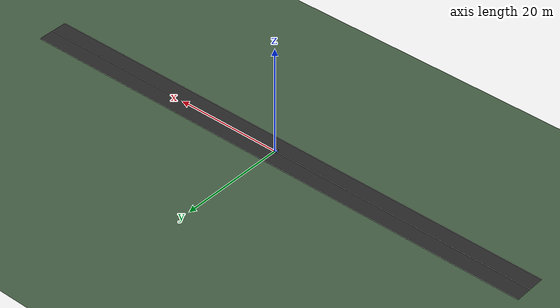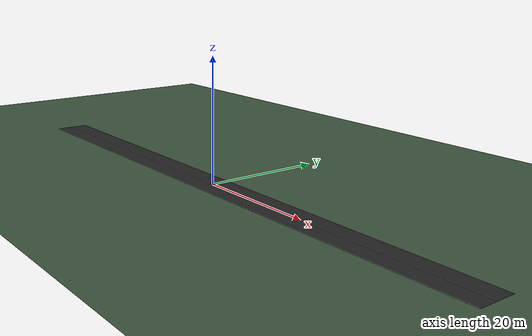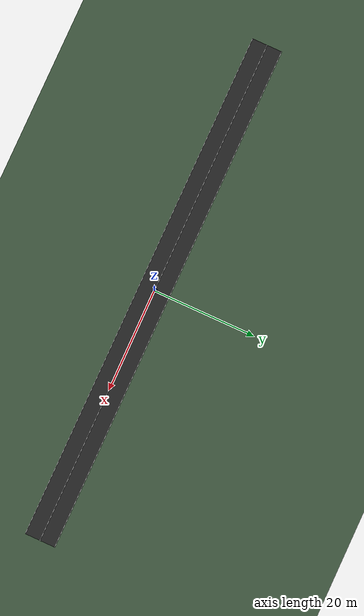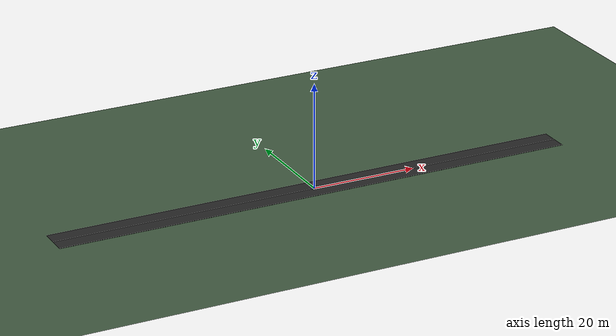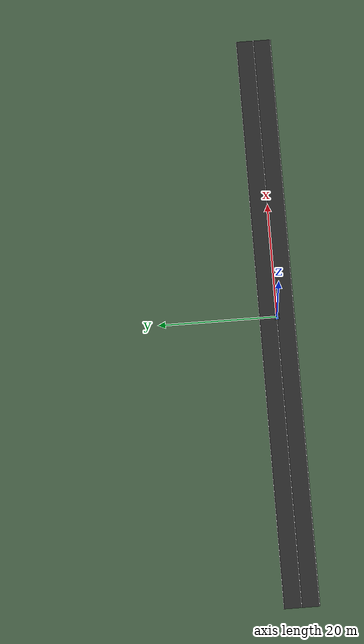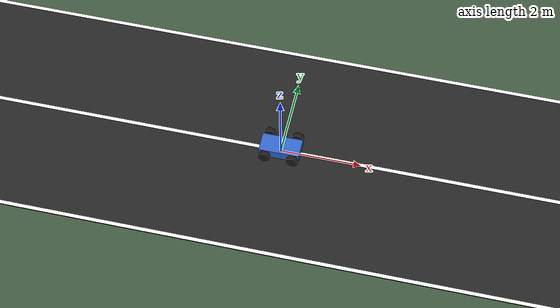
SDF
<?xml version="1.0" ?>
<!--
  Simple straight-road world for ADAS smoke tests.

  Launch the server with:

      gz sim -s scenarios/worlds/simple_road.sdf

  Then connect a GUI (macOS) in a second terminal:

      gz sim -g
-->
<sdf version="1.11">
  <world name="simple_road">
    <scene>
      <ambient>0.6 0.6 0.6 1</ambient>
      <background>0.4 0.6 0.8 1</background>
    </scene>

    <physics name="1ms" type="ignored">
      <max_step_size>0.001</max_step_size>
      <real_time_factor>1.0</real_time_factor>
    </physics>

    <plugin
      filename="gz-sim-physics-system"
      name="gz::sim::systems::Physics">
    </plugin>
    <plugin
      filename="gz-sim-user-commands-system"
      name="gz::sim::systems::UserCommands">
    </plugin>
    <plugin
      filename="gz-sim-scene-broadcaster-system"
      name="gz::sim::systems::SceneBroadcaster">
    </plugin>
    <plugin
      filename="gz-sim-sensors-system"
      name="gz::sim::systems::Sensors">
      <render_engine>ogre2</render_engine>
    </plugin>

    <light type="directional" name="sun">
      <cast_shadows>true</cast_shadows>
      <pose>0 0 10 0 0 0</pose>
      <diffuse>0.9 0.9 0.9 1</diffuse>
      <specular>0.3 0.3 0.3 1</specular>
      <attenuation>
        <range>1000</range>
        <constant>0.9</constant>
        <linear>0.01</linear>
        <quadratic>0.001</quadratic>
      </attenuation>
      <direction>-0.5 0.1 -0.9</direction>
    </light>

    <model name="ground_plane">
      <static>true</static>
      <link name="link">
        <collision name="collision">
          <geometry>
            <plane>
              <normal>0 0 1</normal>
              <size>200 200</size>
            </plane>
          </geometry>
        </collision>
        <visual name="visual">
          <geometry>
            <plane>
              <normal>0 0 1</normal>
              <size>200 200</size>
            </plane>
          </geometry>
          <material>
            <ambient>0.25 0.35 0.25 1</ambient>
            <diffuse>0.25 0.35 0.25 1</diffuse>
            <specular>0.1 0.1 0.1 1</specular>
          </material>
        </visual>
      </link>
    </model>

    <!-- Straight asphalt road -->
    <model name="road_surface">
      <static>true</static>
      <pose>0 0 0.01 0 0 0</pose>
      <link name="link">
        <collision name="collision">
          <geometry>
            <box>
              <size>100 6 0.02</size>
            </box>
          </geometry>
        </collision>
        <visual name="visual">
          <geometry>
            <box>
              <size>100 6 0.02</size>
            </box>
          </geometry>
          <material>
            <ambient>0.15 0.15 0.15 1</ambient>
            <diffuse>0.15 0.15 0.15 1</diffuse>
            <specular>0.05 0.05 0.05 1</specular>
          </material>
        </visual>
      </link>
    </model>

    <!-- Center dashed lane marking -->
    <model name="center_lane_marking">
      <static>true</static>
      <pose>0 0 0.025 0 0 0</pose>
      <link name="link">
        <visual name="visual">
          <geometry>
            <box>
              <size>100 0.1 0.005</size>
            </box>
          </geometry>
          <material>
            <ambient>1 1 1 1</ambient>
            <diffuse>1 1 1 1</diffuse>
            <specular>0.5 0.5 0.5 1</specular>
          </material>
        </visual>
      </link>
    </model>

    <!-- Left solid lane marking -->
    <model name="left_lane_marking">
      <static>true</static>
      <pose>0 2.95 0.025 0 0 0</pose>
      <link name="link">
        <visual name="visual">
          <geometry>
            <box>
              <size>100 0.1 0.005</size>
            </box>
          </geometry>
          <material>
            <ambient>1 1 1 1</ambient>
            <diffuse>1 1 1 1</diffuse>
            <specular>0.5 0.5 0.5 1</specular>
          </material>
        </visual>
      </link>
    </model>

    <!-- Right solid lane marking -->
    <model name="right_lane_marking">
      <static>true</static>
      <pose>0 -2.95 0.025 0 0 0</pose>
      <link name="link">
        <visual name="visual">
          <geometry>
            <box>
              <size>100 0.1 0.005</size>
            </box>
          </geometry>
          <material>
            <ambient>1 1 1 1</ambient>
            <diffuse>1 1 1 1</diffuse>
            <specular>0.5 0.5 0.5 1</specular>
          </material>
        </visual>
      </link>
    </model>

    <!-- Ego vehicle -->
    <include>
      <uri>../models/ego_vehicle</uri>
      <pose>0 0 0.03 0 0 0</pose>
      <name>ego_vehicle</name>
    </include>

  </world>
</sdf>

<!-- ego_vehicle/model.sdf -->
<!--
  Simple Ackermann-steered ego vehicle for ADAS smoke tests.

  Control topic: /model/ego_vehicle/cmd_vel (gz.msgs.Twist)
  Odometry topic: /model/ego_vehicle/odometry (gz.msgs.Odometry)
-->
<sdf version="1.6">
  <model name="ego_vehicle">
    <pose>0 0 0 0 0 0</pose>

    <link name="chassis">
      <pose>0 0 0.1 0 0 0</pose>
      <inertial>
        <mass>5.0</mass>
        <inertia>
          <ixx>0.1</ixx>
          <ixy>0</ixy>
          <ixz>0</ixz>
          <iyy>0.2</iyy>
          <iyz>0</iyz>
          <izz>0.3</izz>
        </inertia>
      </inertial>
      <visual name="visual">
        <geometry>
          <box>
            <size>1.0 0.5 0.25</size>
          </box>
        </geometry>
        <material>
          <ambient>0.2 0.4 0.8 1</ambient>
          <diffuse>0.2 0.4 0.8 1</diffuse>
          <specular>0.1 0.1 0.1 1</specular>
        </material>
      </visual>
      <collision name="collision">
        <geometry>
          <box>
            <size>1.0 0.5 0.25</size>
          </box>
        </geometry>
      </collision>
    </link>

    <link name="front_left_wheel">
      <pose>0.35 0.35 0.15 -1.5707 0 0</pose>
      <inertial>
        <mass>0.5</mass>
        <inertia>
          <ixx>0.005</ixx>
          <ixy>0</ixy>
          <ixz>0</ixz>
          <iyy>0.005</iyy>
          <iyz>0</iyz>
          <izz>0.004</izz>
        </inertia>
      </inertial>
      <visual name="visual">
        <geometry>
          <cylinder>
            <length>0.1</length>
            <radius>0.15</radius>
          </cylinder>
        </geometry>
        <material>
          <ambient>0.1 0.1 0.1 1</ambient>
          <diffuse>0.1 0.1 0.1 1</diffuse>
          <specular>0.1 0.1 0.1 1</specular>
        </material>
      </visual>
      <collision name="collision">
        <geometry>
          <cylinder>
            <length>0.1</length>
            <radius>0.15</radius>
          </cylinder>
        </geometry>
        <surface>
          <friction>
            <ode>
              <mu>0.8</mu>
              <mu2>0.8</mu2>
              <fdir1>0 0 1</fdir1>
            </ode>
          </friction>
        </surface>
      </collision>
    </link>

    <link name="front_right_wheel">
      <pose>0.35 -0.35 0.15 -1.5707 0 0</pose>
      <inertial>
        <mass>0.5</mass>
        <inertia>
          <ixx>0.005</ixx>
          <ixy>0</ixy>
          <ixz>0</ixz>
          <iyy>0.005</iyy>
          <iyz>0</iyz>
          <izz>0.004</izz>
        </inertia>
      </inertial>
      <visual name="visual">
        <geometry>
          <cylinder>
            <length>0.1</length>
            <radius>0.15</radius>
          </cylinder>
        </geometry>
        <material>
          <ambient>0.1 0.1 0.1 1</ambient>
          <diffuse>0.1 0.1 0.1 1</diffuse>
          <specular>0.1 0.1 0.1 1</specular>
        </material>
      </visual>
      <collision name="collision">
        <geometry>
          <cylinder>
            <length>0.1</length>
            <radius>0.15</radius>
          </cylinder>
        </geometry>
        <surface>
          <friction>
            <ode>
              <mu>0.8</mu>
              <mu2>0.8</mu2>
              <fdir1>0 0 1</fdir1>
            </ode>
          </friction>
        </surface>
      </collision>
    </link>

    <link name="rear_left_wheel">
      <pose>-0.35 0.35 0.15 -1.5707 0 0</pose>
      <inertial>
        <mass>0.5</mass>
        <inertia>
          <ixx>0.005</ixx>
          <ixy>0</ixy>
          <ixz>0</ixz>
          <iyy>0.005</iyy>
          <iyz>0</iyz>
          <izz>0.004</izz>
        </inertia>
      </inertial>
      <visual name="visual">
        <geometry>
          <cylinder>
            <length>0.1</length>
            <radius>0.15</radius>
          </cylinder>
        </geometry>
        <material>
          <ambient>0.1 0.1 0.1 1</ambient>
          <diffuse>0.1 0.1 0.1 1</diffuse>
          <specular>0.1 0.1 0.1 1</specular>
        </material>
      </visual>
      <collision name="collision">
        <geometry>
          <cylinder>
            <length>0.1</length>
            <radius>0.15</radius>
          </cylinder>
        </geometry>
        <surface>
          <friction>
            <ode>
              <mu>0.8</mu>
              <mu2>0.8</mu2>
              <fdir1>0 0 1</fdir1>
            </ode>
          </friction>
        </surface>
      </collision>
    </link>

    <link name="rear_right_wheel">
      <pose>-0.35 -0.35 0.15 -1.5707 0 0</pose>
      <inertial>
        <mass>0.5</mass>
        <inertia>
          <ixx>0.005</ixx>
          <ixy>0</ixy>
          <ixz>0</ixz>
          <iyy>0.005</iyy>
          <iyz>0</iyz>
          <izz>0.004</izz>
        </inertia>
      </inertial>
      <visual name="visual">
        <geometry>
          <cylinder>
            <length>0.1</length>
            <radius>0.15</radius>
          </cylinder>
        </geometry>
        <material>
          <ambient>0.1 0.1 0.1 1</ambient>
          <diffuse>0.1 0.1 0.1 1</diffuse>
          <specular>0.1 0.1 0.1 1</specular>
        </material>
      </visual>
      <collision name="collision">
        <geometry>
          <cylinder>
            <length>0.1</length>
            <radius>0.15</radius>
          </cylinder>
        </geometry>
        <surface>
          <friction>
            <ode>
              <mu>0.8</mu>
              <mu2>0.8</mu2>
              <fdir1>0 0 1</fdir1>
            </ode>
          </friction>
        </surface>
      </collision>
    </link>

    <link name="front_left_steering_link">
      <pose>0.35 0.25 0.15 0 0 0</pose>
      <inertial>
        <mass>0.1</mass>
        <inertia>
          <ixx>0.001</ixx>
          <iyy>0.001</iyy>
          <izz>0.001</izz>
        </inertia>
      </inertial>
    </link>

    <link name="front_right_steering_link">
      <pose>0.35 -0.25 0.15 0 0 0</pose>
      <inertial>
        <mass>0.1</mass>
        <inertia>
          <ixx>0.001</ixx>
          <iyy>0.001</iyy>
          <izz>0.001</izz>
        </inertia>
      </inertial>
    </link>

    <joint name="front_left_steering_joint" type="revolute">
      <parent>chassis</parent>
      <child>front_left_steering_link</child>
      <axis>
        <xyz>0 0 1</xyz>
        <limit>
          <lower>-0.6</lower>
          <upper>0.6</upper>
          <velocity>2.0</velocity>
          <effort>10</effort>
        </limit>
        <use_parent_model_frame>1</use_parent_model_frame>
      </axis>
    </joint>

    <joint name="front_right_steering_joint" type="revolute">
      <parent>chassis</parent>
      <child>front_right_steering_link</child>
      <axis>
        <xyz>0 0 1</xyz>
        <limit>
          <lower>-0.6</lower>
          <upper>0.6</upper>
          <velocity>2.0</velocity>
          <effort>10</effort>
        </limit>
        <use_parent_model_frame>1</use_parent_model_frame>
      </axis>
    </joint>

    <joint name="front_left_wheel_joint" type="revolute">
      <parent>front_left_steering_link</parent>
      <child>front_left_wheel</child>
      <axis>
        <xyz>0 0 1</xyz>
        <limit>
          <lower>-1e+16</lower>
          <upper>1e+16</upper>
        </limit>
      </axis>
    </joint>

    <joint name="front_right_wheel_joint" type="revolute">
      <parent>front_right_steering_link</parent>
      <child>front_right_wheel</child>
      <axis>
        <xyz>0 0 1</xyz>
        <limit>
          <lower>-1e+16</lower>
          <upper>1e+16</upper>
        </limit>
      </axis>
    </joint>

    <joint name="rear_left_wheel_joint" type="revolute">
      <parent>chassis</parent>
      <child>rear_left_wheel</child>
      <axis>
        <xyz>0 0 1</xyz>
        <limit>
          <lower>-1e+16</lower>
          <upper>1e+16</upper>
        </limit>
      </axis>
    </joint>

    <joint name="rear_right_wheel_joint" type="revolute">
      <parent>chassis</parent>
      <child>rear_right_wheel</child>
      <axis>
        <xyz>0 0 1</xyz>
        <limit>
          <lower>-1e+16</lower>
          <upper>1e+16</upper>
        </limit>
      </axis>
    </joint>

    <!-- Front-facing camera -->
    <link name="camera_link">
      <pose>0.45 0 0.25 0 0 0</pose>
      <inertial>
        <mass>0.05</mass>
        <inertia>
          <ixx>0.0001</ixx>
          <ixy>0</ixy>
          <ixz>0</ixz>
          <iyy>0.0001</iyy>
          <iyz>0</iyz>
          <izz>0.0001</izz>
        </inertia>
      </inertial>
      <sensor name="front_camera" type="camera">
        <always_on>1</always_on>
        <update_rate>30</update_rate>
        <camera>
          <horizontal_fov>1.3962634</horizontal_fov>
          <image>
            <width>640</width>
            <height>480</height>
            <format>R8G8B8</format>
          </image>
          <clip>
            <near>0.1</near>
            <far>100</far>
          </clip>
        </camera>
      </sensor>
    </link>
    <joint name="camera_joint" type="fixed">
      <parent>chassis</parent>
      <child>camera_link</child>
    </joint>

    <!-- Roof-mounted lidar -->
    <link name="lidar_link">
      <pose>0.0 0 0.35 0 0 0</pose>
      <inertial>
        <mass>0.05</mass>
        <inertia>
          <ixx>0.0001</ixx>
          <ixy>0</ixy>
          <ixz>0</ixz>
          <iyy>0.0001</iyy>
          <iyz>0</iyz>
          <izz>0.0001</izz>
        </inertia>
      </inertial>
      <sensor name="front_lidar" type="gpu_lidar">
        <always_on>1</always_on>
        <update_rate>10</update_rate>
        <lidar>
          <scan>
            <horizontal>
              <samples>360</samples>
              <resolution>1</resolution>
              <min_angle>-3.14159</min_angle>
              <max_angle>3.14159</max_angle>
            </horizontal>
            <vertical>
              <samples>1</samples>
              <resolution>1</resolution>
              <min_angle>0</min_angle>
              <max_angle>0</max_angle>
            </vertical>
          </scan>
          <range>
            <min>0.1</min>
            <max>50.0</max>
            <resolution>0.01</resolution>
          </range>
        </lidar>
      </sensor>
    </link>
    <joint name="lidar_joint" type="fixed">
      <parent>chassis</parent>
      <child>lidar_link</child>
    </joint>

    <plugin
      filename="gz-sim-ackermann-steering-system"
      name="gz::sim::systems::AckermannSteering">
      <left_joint>front_left_wheel_joint</left_joint>
      <left_joint>rear_left_wheel_joint</left_joint>
      <right_joint>front_right_wheel_joint</right_joint>
      <right_joint>rear_right_wheel_joint</right_joint>
      <left_steering_joint>front_left_steering_joint</left_steering_joint>
      <right_steering_joint>front_right_steering_joint</right_steering_joint>
      <kingpin_width>0.5</kingpin_width>
      <steering_limit>0.6</steering_limit>
      <wheel_base>0.7</wheel_base>
      <wheel_separation>0.7</wheel_separation>
      <wheel_radius>0.15</wheel_radius>
      <min_velocity>-2</min_velocity>
      <max_velocity>2</max_velocity>
      <min_acceleration>-5</min_acceleration>
      <max_acceleration>5</max_acceleration>
    </plugin>

  </model>
</sdf>
